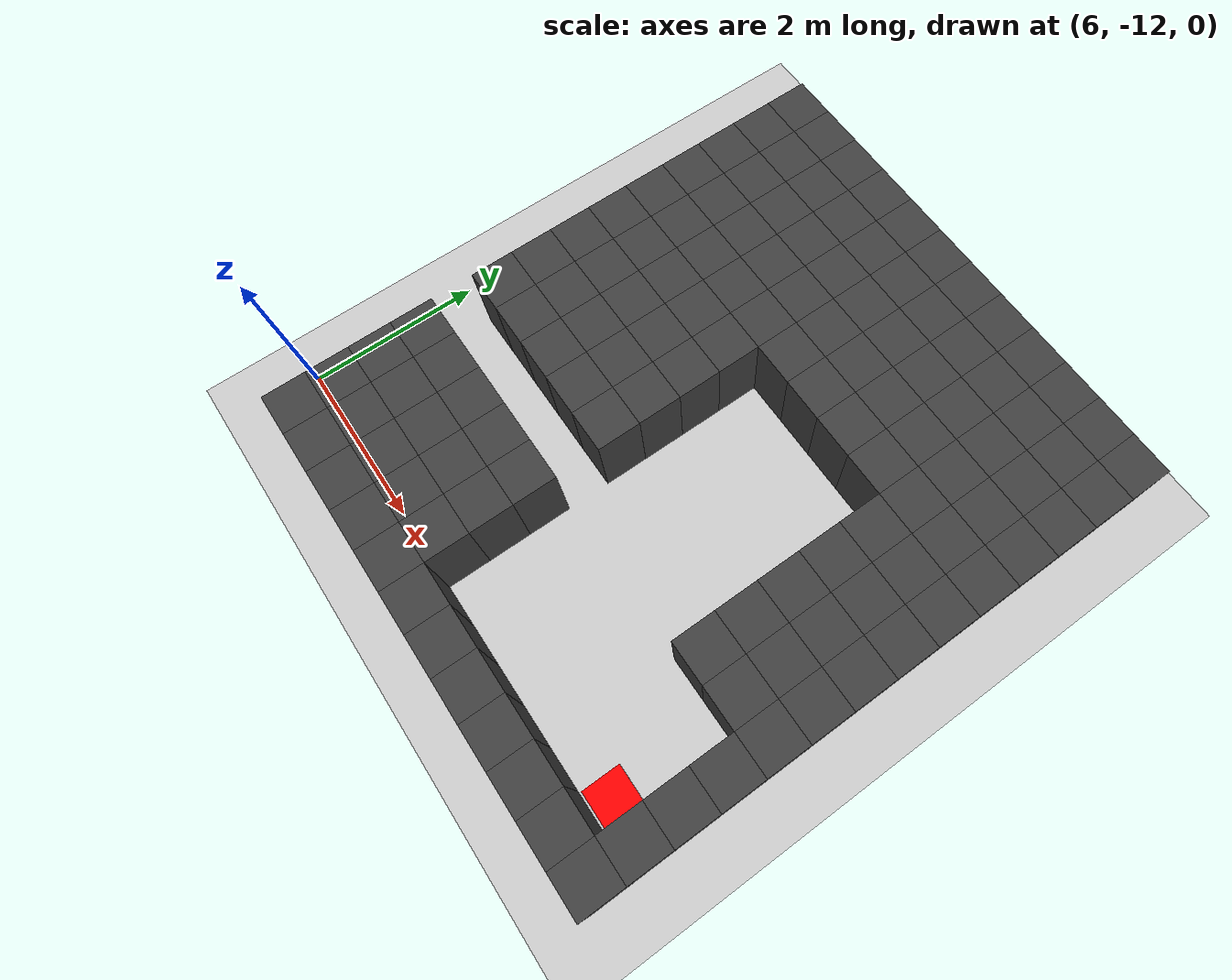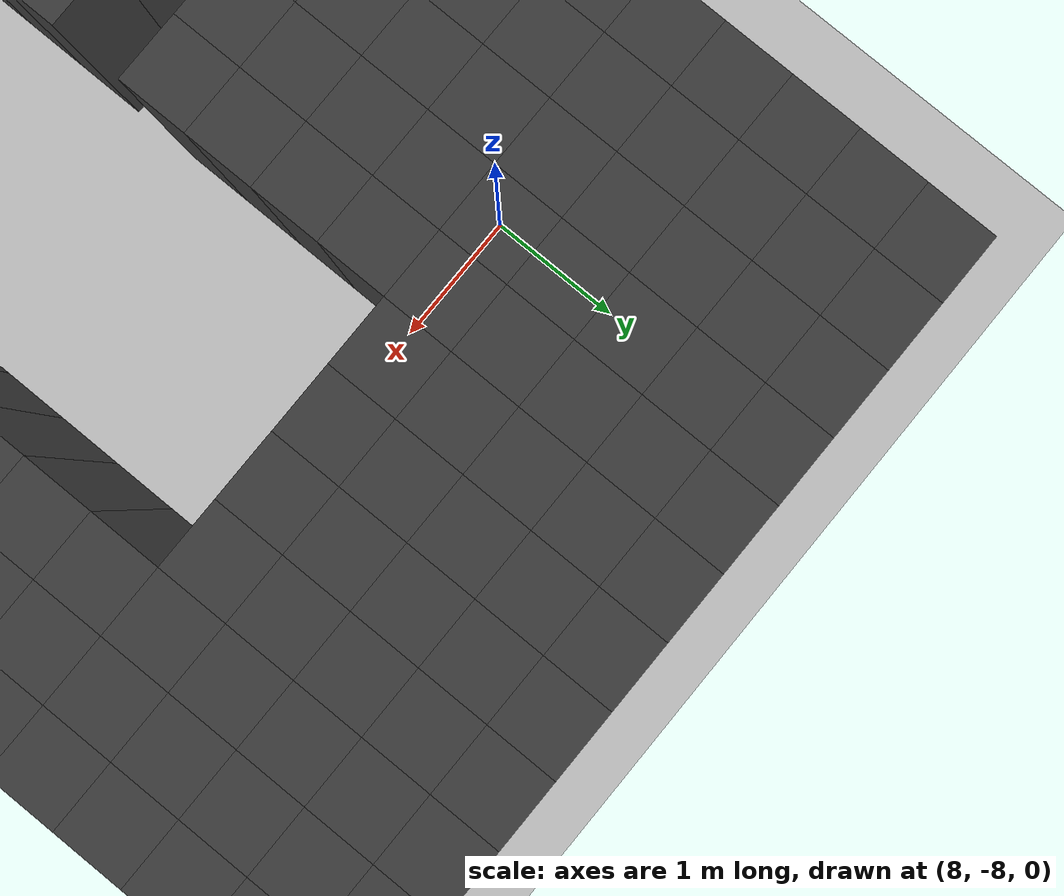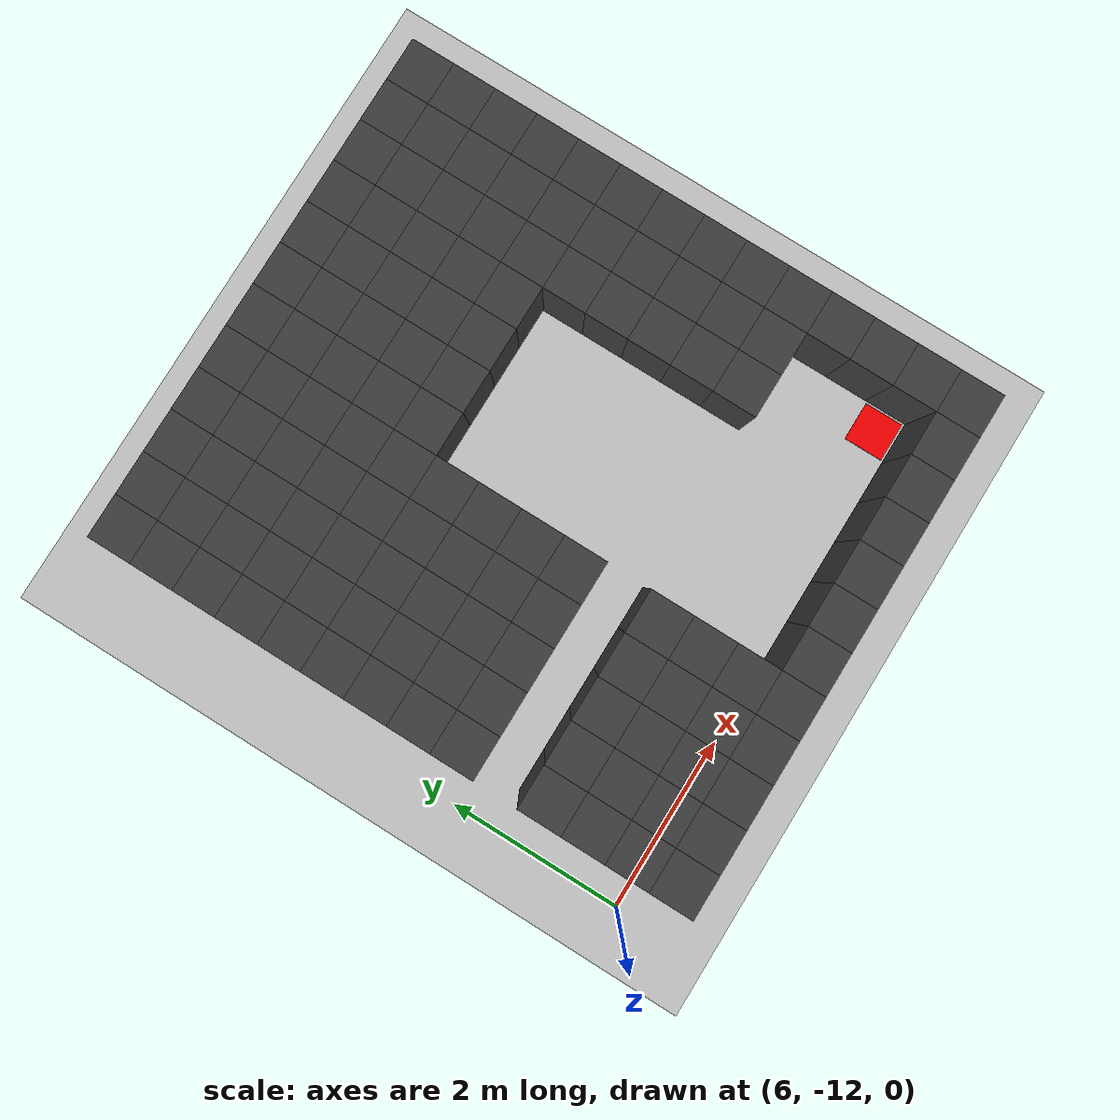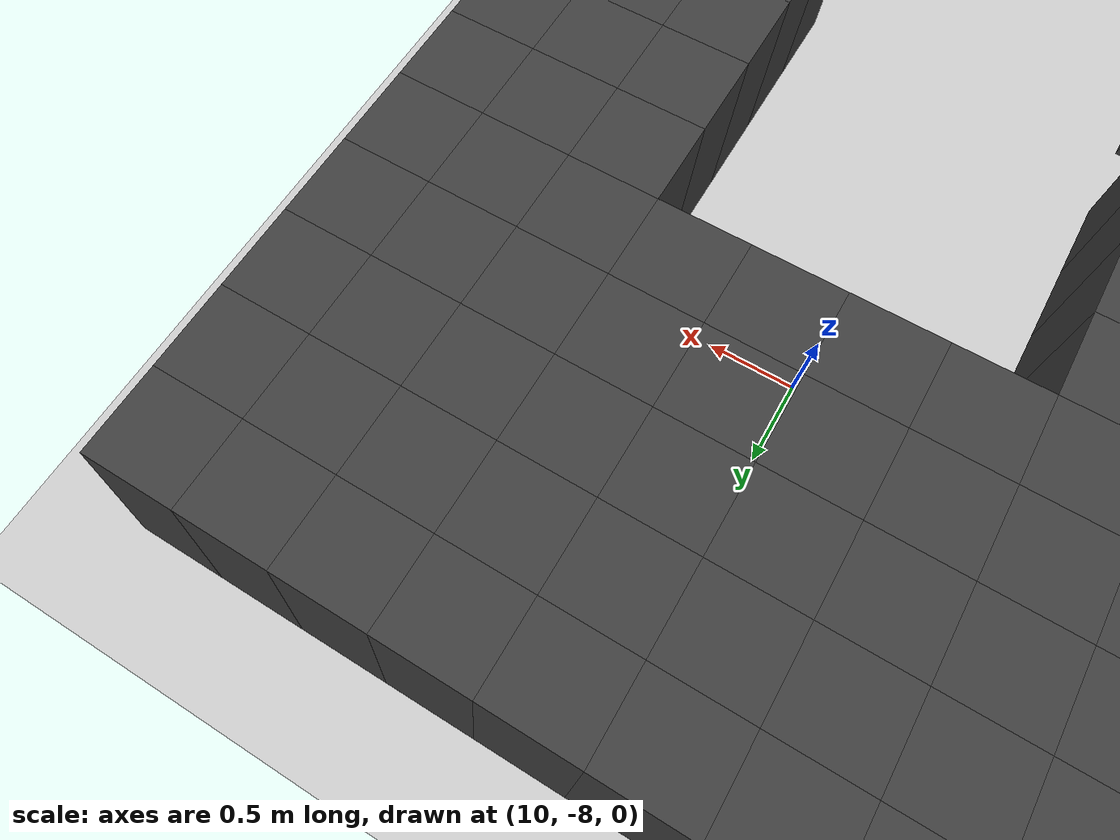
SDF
<sdf version="1.7">
 <world name="map_11779">
  <model name="ground_plane">
   <static>true</static>
   <link name="link">
    <collision name="collision">
     <geometry><plane><normal>0 0 1</normal><size>200 200</size></plane></geometry>
    </collision>
    <visual name="visual">
     <geometry><plane><normal>0 0 1</normal><size>200 200</size></plane></geometry>
     <material><ambient>0.8 0.8 0.8 1</ambient><diffuse>0.8 0.8 0.8 1</diffuse></material>
    </visual>
   </link>
  </model>
  <model name="maze_environment">
   <static>true</static>
   <link name="wall_1523">
    <pose>6.750 -5.750 0.500 0 0 0</pose>
    <collision name="col"><geometry><box><size>0.5 0.5 1.0</size></box></geometry></collision>
    <visual name="vis">
     <geometry><box><size>0.5 0.5 1.0</size></box></geometry>
     <material><ambient>0.15 0.15 0.15 1</ambient><diffuse>0.25 0.25 0.25 1</diffuse></material>
    </visual>
   </link>
   <link name="wall_1524">
    <pose>7.250 -5.750 0.500 0 0 0</pose>
    <collision name="col"><geometry><box><size>0.5 0.5 1.0</size></box></geometry></collision>
    <visual name="vis">
     <geometry><box><size>0.5 0.5 1.0</size></box></geometry>
     <material><ambient>0.15 0.15 0.15 1</ambient><diffuse>0.25 0.25 0.25 1</diffuse></material>
    </visual>
   </link>
   <link name="wall_1525">
    <pose>7.750 -5.750 0.500 0 0 0</pose>
    <collision name="col"><geometry><box><size>0.5 0.5 1.0</size></box></geometry></collision>
    <visual name="vis">
     <geometry><box><size>0.5 0.5 1.0</size></box></geometry>
     <material><ambient>0.15 0.15 0.15 1</ambient><diffuse>0.25 0.25 0.25 1</diffuse></material>
    </visual>
   </link>
   <link name="wall_1526">
    <pose>8.250 -5.750 0.500 0 0 0</pose>
    <collision name="col"><geometry><box><size>0.5 0.5 1.0</size></box></geometry></collision>
    <visual name="vis">
     <geometry><box><size>0.5 0.5 1.0</size></box></geometry>
     <material><ambient>0.15 0.15 0.15 1</ambient><diffuse>0.25 0.25 0.25 1</diffuse></material>
    </visual>
   </link>
   <link name="wall_1527">
    <pose>8.750 -5.750 0.500 0 0 0</pose>
    <collision name="col"><geometry><box><size>0.5 0.5 1.0</size></box></geometry></collision>
    <visual name="vis">
     <geometry><box><size>0.5 0.5 1.0</size></box></geometry>
     <material><ambient>0.15 0.15 0.15 1</ambient><diffuse>0.25 0.25 0.25 1</diffuse></material>
    </visual>
   </link>
   <link name="wall_1528">
    <pose>9.250 -5.750 0.500 0 0 0</pose>
    <collision name="col"><geometry><box><size>0.5 0.5 1.0</size></box></geometry></collision>
    <visual name="vis">
     <geometry><box><size>0.5 0.5 1.0</size></box></geometry>
     <material><ambient>0.15 0.15 0.15 1</ambient><diffuse>0.25 0.25 0.25 1</diffuse></material>
    </visual>
   </link>
   <link name="wall_1529">
    <pose>9.750 -5.750 0.500 0 0 0</pose>
    <collision name="col"><geometry><box><size>0.5 0.5 1.0</size></box></geometry></collision>
    <visual name="vis">
     <geometry><box><size>0.5 0.5 1.0</size></box></geometry>
     <material><ambient>0.15 0.15 0.15 1</ambient><diffuse>0.25 0.25 0.25 1</diffuse></material>
    </visual>
   </link>
   <link name="wall_1530">
    <pose>10.250 -5.750 0.500 0 0 0</pose>
    <collision name="col"><geometry><box><size>0.5 0.5 1.0</size></box></geometry></collision>
    <visual name="vis">
     <geometry><box><size>0.5 0.5 1.0</size></box></geometry>
     <material><ambient>0.15 0.15 0.15 1</ambient><diffuse>0.25 0.25 0.25 1</diffuse></material>
    </visual>
   </link>
   <link name="wall_1531">
    <pose>10.750 -5.750 0.500 0 0 0</pose>
    <collision name="col"><geometry><box><size>0.5 0.5 1.0</size></box></geometry></collision>
    <visual name="vis">
     <geometry><box><size>0.5 0.5 1.0</size></box></geometry>
     <material><ambient>0.15 0.15 0.15 1</ambient><diffuse>0.25 0.25 0.25 1</diffuse></material>
    </visual>
   </link>
   <link name="wall_1532">
    <pose>11.250 -5.750 0.500 0 0 0</pose>
    <collision name="col"><geometry><box><size>0.5 0.5 1.0</size></box></geometry></collision>
    <visual name="vis">
     <geometry><box><size>0.5 0.5 1.0</size></box></geometry>
     <material><ambient>0.15 0.15 0.15 1</ambient><diffuse>0.25 0.25 0.25 1</diffuse></material>
    </visual>
   </link>
   <link name="wall_1533">
    <pose>11.750 -5.750 0.500 0 0 0</pose>
    <collision name="col"><geometry><box><size>0.5 0.5 1.0</size></box></geometry></collision>
    <visual name="vis">
     <geometry><box><size>0.5 0.5 1.0</size></box></geometry>
     <material><ambient>0.15 0.15 0.15 1</ambient><diffuse>0.25 0.25 0.25 1</diffuse></material>
    </visual>
   </link>
   <link name="wall_1534">
    <pose>12.250 -5.750 0.500 0 0 0</pose>
    <collision name="col"><geometry><box><size>0.5 0.5 1.0</size></box></geometry></collision>
    <visual name="vis">
     <geometry><box><size>0.5 0.5 1.0</size></box></geometry>
     <material><ambient>0.15 0.15 0.15 1</ambient><diffuse>0.25 0.25 0.25 1</diffuse></material>
    </visual>
   </link>
   <link name="wall_1572">
    <pose>6.750 -6.250 0.500 0 0 0</pose>
    <collision name="col"><geometry><box><size>0.5 0.5 1.0</size></box></geometry></collision>
    <visual name="vis">
     <geometry><box><size>0.5 0.5 1.0</size></box></geometry>
     <material><ambient>0.15 0.15 0.15 1</ambient><diffuse>0.25 0.25 0.25 1</diffuse></material>
    </visual>
   </link>
   <link name="wall_1573">
    <pose>7.250 -6.250 0.500 0 0 0</pose>
    <collision name="col"><geometry><box><size>0.5 0.5 1.0</size></box></geometry></collision>
    <visual name="vis">
     <geometry><box><size>0.5 0.5 1.0</size></box></geometry>
     <material><ambient>0.15 0.15 0.15 1</ambient><diffuse>0.25 0.25 0.25 1</diffuse></material>
    </visual>
   </link>
   <link name="wall_1574">
    <pose>7.750 -6.250 0.500 0 0 0</pose>
    <collision name="col"><geometry><box><size>0.5 0.5 1.0</size></box></geometry></collision>
    <visual name="vis">
     <geometry><box><size>0.5 0.5 1.0</size></box></geometry>
     <material><ambient>0.15 0.15 0.15 1</ambient><diffuse>0.25 0.25 0.25 1</diffuse></material>
    </visual>
   </link>
   <link name="wall_1575">
    <pose>8.250 -6.250 0.500 0 0 0</pose>
    <collision name="col"><geometry><box><size>0.5 0.5 1.0</size></box></geometry></collision>
    <visual name="vis">
     <geometry><box><size>0.5 0.5 1.0</size></box></geometry>
     <material><ambient>0.15 0.15 0.15 1</ambient><diffuse>0.25 0.25 0.25 1</diffuse></material>
    </visual>
   </link>
   <link name="wall_1576">
    <pose>8.750 -6.250 0.500 0 0 0</pose>
    <collision name="col"><geometry><box><size>0.5 0.5 1.0</size></box></geometry></collision>
    <visual name="vis">
     <geometry><box><size>0.5 0.5 1.0</size></box></geometry>
     <material><ambient>0.15 0.15 0.15 1</ambient><diffuse>0.25 0.25 0.25 1</diffuse></material>
    </visual>
   </link>
   <link name="wall_1577">
    <pose>9.250 -6.250 0.500 0 0 0</pose>
    <collision name="col"><geometry><box><size>0.5 0.5 1.0</size></box></geometry></collision>
    <visual name="vis">
     <geometry><box><size>0.5 0.5 1.0</size></box></geometry>
     <material><ambient>0.15 0.15 0.15 1</ambient><diffuse>0.25 0.25 0.25 1</diffuse></material>
    </visual>
   </link>
   <link name="wall_1578">
    <pose>9.750 -6.250 0.500 0 0 0</pose>
    <collision name="col"><geometry><box><size>0.5 0.5 1.0</size></box></geometry></collision>
    <visual name="vis">
     <geometry><box><size>0.5 0.5 1.0</size></box></geometry>
     <material><ambient>0.15 0.15 0.15 1</ambient><diffuse>0.25 0.25 0.25 1</diffuse></material>
    </visual>
   </link>
   <link name="wall_1579">
    <pose>10.250 -6.250 0.500 0 0 0</pose>
    <collision name="col"><geometry><box><size>0.5 0.5 1.0</size></box></geometry></collision>
    <visual name="vis">
     <geometry><box><size>0.5 0.5 1.0</size></box></geometry>
     <material><ambient>0.15 0.15 0.15 1</ambient><diffuse>0.25 0.25 0.25 1</diffuse></material>
    </visual>
   </link>
   <link name="wall_1580">
    <pose>10.750 -6.250 0.500 0 0 0</pose>
    <collision name="col"><geometry><box><size>0.5 0.5 1.0</size></box></geometry></collision>
    <visual name="vis">
     <geometry><box><size>0.5 0.5 1.0</size></box></geometry>
     <material><ambient>0.15 0.15 0.15 1</ambient><diffuse>0.25 0.25 0.25 1</diffuse></material>
    </visual>
   </link>
   <link name="wall_1581">
    <pose>11.250 -6.250 0.500 0 0 0</pose>
    <collision name="col"><geometry><box><size>0.5 0.5 1.0</size></box></geometry></collision>
    <visual name="vis">
     <geometry><box><size>0.5 0.5 1.0</size></box></geometry>
     <material><ambient>0.15 0.15 0.15 1</ambient><diffuse>0.25 0.25 0.25 1</diffuse></material>
    </visual>
   </link>
   <link name="wall_1582">
    <pose>11.750 -6.250 0.500 0 0 0</pose>
    <collision name="col"><geometry><box><size>0.5 0.5 1.0</size></box></geometry></collision>
    <visual name="vis">
     <geometry><box><size>0.5 0.5 1.0</size></box></geometry>
     <material><ambient>0.15 0.15 0.15 1</ambient><diffuse>0.25 0.25 0.25 1</diffuse></material>
    </visual>
   </link>
   <link name="wall_1583">
    <pose>12.250 -6.250 0.500 0 0 0</pose>
    <collision name="col"><geometry><box><size>0.5 0.5 1.0</size></box></geometry></collision>
    <visual name="vis">
     <geometry><box><size>0.5 0.5 1.0</size></box></geometry>
     <material><ambient>0.15 0.15 0.15 1</ambient><diffuse>0.25 0.25 0.25 1</diffuse></material>
    </visual>
   </link>
   <link name="wall_1616">
    <pose>6.750 -6.750 0.500 0 0 0</pose>
    <collision name="col"><geometry><box><size>0.5 0.5 1.0</size></box></geometry></collision>
    <visual name="vis">
     <geometry><box><size>0.5 0.5 1.0</size></box></geometry>
     <material><ambient>0.15 0.15 0.15 1</ambient><diffuse>0.25 0.25 0.25 1</diffuse></material>
    </visual>
   </link>
   <link name="wall_1617">
    <pose>7.250 -6.750 0.500 0 0 0</pose>
    <collision name="col"><geometry><box><size>0.5 0.5 1.0</size></box></geometry></collision>
    <visual name="vis">
     <geometry><box><size>0.5 0.5 1.0</size></box></geometry>
     <material><ambient>0.15 0.15 0.15 1</ambient><diffuse>0.25 0.25 0.25 1</diffuse></material>
    </visual>
   </link>
   <link name="wall_1618">
    <pose>7.750 -6.750 0.500 0 0 0</pose>
    <collision name="col"><geometry><box><size>0.5 0.5 1.0</size></box></geometry></collision>
    <visual name="vis">
     <geometry><box><size>0.5 0.5 1.0</size></box></geometry>
     <material><ambient>0.15 0.15 0.15 1</ambient><diffuse>0.25 0.25 0.25 1</diffuse></material>
    </visual>
   </link>
   <link name="wall_1619">
    <pose>8.250 -6.750 0.500 0 0 0</pose>
    <collision name="col"><geometry><box><size>0.5 0.5 1.0</size></box></geometry></collision>
    <visual name="vis">
     <geometry><box><size>0.5 0.5 1.0</size></box></geometry>
     <material><ambient>0.15 0.15 0.15 1</ambient><diffuse>0.25 0.25 0.25 1</diffuse></material>
    </visual>
   </link>
   <link name="wall_1620">
    <pose>8.750 -6.750 0.500 0 0 0</pose>
    <collision name="col"><geometry><box><size>0.5 0.5 1.0</size></box></geometry></collision>
    <visual name="vis">
     <geometry><box><size>0.5 0.5 1.0</size></box></geometry>
     <material><ambient>0.15 0.15 0.15 1</ambient><diffuse>0.25 0.25 0.25 1</diffuse></material>
    </visual>
   </link>
   <link name="wall_1621">
    <pose>9.250 -6.750 0.500 0 0 0</pose>
    <collision name="col"><geometry><box><size>0.5 0.5 1.0</size></box></geometry></collision>
    <visual name="vis">
     <geometry><box><size>0.5 0.5 1.0</size></box></geometry>
     <material><ambient>0.15 0.15 0.15 1</ambient><diffuse>0.25 0.25 0.25 1</diffuse></material>
    </visual>
   </link>
   <link name="wall_1622">
    <pose>9.750 -6.750 0.500 0 0 0</pose>
    <collision name="col"><geometry><box><size>0.5 0.5 1.0</size></box></geometry></collision>
    <visual name="vis">
     <geometry><box><size>0.5 0.5 1.0</size></box></geometry>
     <material><ambient>0.15 0.15 0.15 1</ambient><diffuse>0.25 0.25 0.25 1</diffuse></material>
    </visual>
   </link>
   <link name="wall_1623">
    <pose>10.250 -6.750 0.500 0 0 0</pose>
    <collision name="col"><geometry><box><size>0.5 0.5 1.0</size></box></geometry></collision>
    <visual name="vis">
     <geometry><box><size>0.5 0.5 1.0</size></box></geometry>
     <material><ambient>0.15 0.15 0.15 1</ambient><diffuse>0.25 0.25 0.25 1</diffuse></material>
    </visual>
   </link>
   <link name="wall_1624">
    <pose>10.750 -6.750 0.500 0 0 0</pose>
    <collision name="col"><geometry><box><size>0.5 0.5 1.0</size></box></geometry></collision>
    <visual name="vis">
     <geometry><box><size>0.5 0.5 1.0</size></box></geometry>
     <material><ambient>0.15 0.15 0.15 1</ambient><diffuse>0.25 0.25 0.25 1</diffuse></material>
    </visual>
   </link>
   <link name="wall_1625">
    <pose>11.250 -6.750 0.500 0 0 0</pose>
    <collision name="col"><geometry><box><size>0.5 0.5 1.0</size></box></geometry></collision>
    <visual name="vis">
     <geometry><box><size>0.5 0.5 1.0</size></box></geometry>
     <material><ambient>0.15 0.15 0.15 1</ambient><diffuse>0.25 0.25 0.25 1</diffuse></material>
    </visual>
   </link>
   <link name="wall_1626">
    <pose>11.750 -6.750 0.500 0 0 0</pose>
    <collision name="col"><geometry><box><size>0.5 0.5 1.0</size></box></geometry></collision>
    <visual name="vis">
     <geometry><box><size>0.5 0.5 1.0</size></box></geometry>
     <material><ambient>0.15 0.15 0.15 1</ambient><diffuse>0.25 0.25 0.25 1</diffuse></material>
    </visual>
   </link>
   <link name="wall_1627">
    <pose>12.250 -6.750 0.500 0 0 0</pose>
    <collision name="col"><geometry><box><size>0.5 0.5 1.0</size></box></geometry></collision>
    <visual name="vis">
     <geometry><box><size>0.5 0.5 1.0</size></box></geometry>
     <material><ambient>0.15 0.15 0.15 1</ambient><diffuse>0.25 0.25 0.25 1</diffuse></material>
    </visual>
   </link>
   <link name="wall_1660">
    <pose>6.750 -7.250 0.500 0 0 0</pose>
    <collision name="col"><geometry><box><size>0.5 0.5 1.0</size></box></geometry></collision>
    <visual name="vis">
     <geometry><box><size>0.5 0.5 1.0</size></box></geometry>
     <material><ambient>0.15 0.15 0.15 1</ambient><diffuse>0.25 0.25 0.25 1</diffuse></material>
    </visual>
   </link>
   <link name="wall_1661">
    <pose>7.250 -7.250 0.500 0 0 0</pose>
    <collision name="col"><geometry><box><size>0.5 0.5 1.0</size></box></geometry></collision>
    <visual name="vis">
     <geometry><box><size>0.5 0.5 1.0</size></box></geometry>
     <material><ambient>0.15 0.15 0.15 1</ambient><diffuse>0.25 0.25 0.25 1</diffuse></material>
    </visual>
   </link>
   <link name="wall_1662">
    <pose>7.750 -7.250 0.500 0 0 0</pose>
    <collision name="col"><geometry><box><size>0.5 0.5 1.0</size></box></geometry></collision>
    <visual name="vis">
     <geometry><box><size>0.5 0.5 1.0</size></box></geometry>
     <material><ambient>0.15 0.15 0.15 1</ambient><diffuse>0.25 0.25 0.25 1</diffuse></material>
    </visual>
   </link>
   <link name="wall_1663">
    <pose>8.250 -7.250 0.500 0 0 0</pose>
    <collision name="col"><geometry><box><size>0.5 0.5 1.0</size></box></geometry></collision>
    <visual name="vis">
     <geometry><box><size>0.5 0.5 1.0</size></box></geometry>
     <material><ambient>0.15 0.15 0.15 1</ambient><diffuse>0.25 0.25 0.25 1</diffuse></material>
    </visual>
   </link>
   <link name="wall_1664">
    <pose>8.750 -7.250 0.500 0 0 0</pose>
    <collision name="col"><geometry><box><size>0.5 0.5 1.0</size></box></geometry></collision>
    <visual name="vis">
     <geometry><box><size>0.5 0.5 1.0</size></box></geometry>
     <material><ambient>0.15 0.15 0.15 1</ambient><diffuse>0.25 0.25 0.25 1</diffuse></material>
    </visual>
   </link>
   <link name="wall_1665">
    <pose>9.250 -7.250 0.500 0 0 0</pose>
    <collision name="col"><geometry><box><size>0.5 0.5 1.0</size></box></geometry></collision>
    <visual name="vis">
     <geometry><box><size>0.5 0.5 1.0</size></box></geometry>
     <material><ambient>0.15 0.15 0.15 1</ambient><diffuse>0.25 0.25 0.25 1</diffuse></material>
    </visual>
   </link>
   <link name="wall_1666">
    <pose>9.750 -7.250 0.500 0 0 0</pose>
    <collision name="col"><geometry><box><size>0.5 0.5 1.0</size></box></geometry></collision>
    <visual name="vis">
     <geometry><box><size>0.5 0.5 1.0</size></box></geometry>
     <material><ambient>0.15 0.15 0.15 1</ambient><diffuse>0.25 0.25 0.25 1</diffuse></material>
    </visual>
   </link>
   <link name="wall_1667">
    <pose>10.250 -7.250 0.500 0 0 0</pose>
    <collision name="col"><geometry><box><size>0.5 0.5 1.0</size></box></geometry></collision>
    <visual name="vis">
     <geometry><box><size>0.5 0.5 1.0</size></box></geometry>
     <material><ambient>0.15 0.15 0.15 1</ambient><diffuse>0.25 0.25 0.25 1</diffuse></material>
    </visual>
   </link>
   <link name="wall_1668">
    <pose>10.750 -7.250 0.500 0 0 0</pose>
    <collision name="col"><geometry><box><size>0.5 0.5 1.0</size></box></geometry></collision>
    <visual name="vis">
     <geometry><box><size>0.5 0.5 1.0</size></box></geometry>
     <material><ambient>0.15 0.15 0.15 1</ambient><diffuse>0.25 0.25 0.25 1</diffuse></material>
    </visual>
   </link>
   <link name="wall_1669">
    <pose>11.250 -7.250 0.500 0 0 0</pose>
    <collision name="col"><geometry><box><size>0.5 0.5 1.0</size></box></geometry></collision>
    <visual name="vis">
     <geometry><box><size>0.5 0.5 1.0</size></box></geometry>
     <material><ambient>0.15 0.15 0.15 1</ambient><diffuse>0.25 0.25 0.25 1</diffuse></material>
    </visual>
   </link>
   <link name="wall_1670">
    <pose>11.750 -7.250 0.500 0 0 0</pose>
    <collision name="col"><geometry><box><size>0.5 0.5 1.0</size></box></geometry></collision>
    <visual name="vis">
     <geometry><box><size>0.5 0.5 1.0</size></box></geometry>
     <material><ambient>0.15 0.15 0.15 1</ambient><diffuse>0.25 0.25 0.25 1</diffuse></material>
    </visual>
   </link>
   <link name="wall_1671">
    <pose>12.250 -7.250 0.500 0 0 0</pose>
    <collision name="col"><geometry><box><size>0.5 0.5 1.0</size></box></geometry></collision>
    <visual name="vis">
     <geometry><box><size>0.5 0.5 1.0</size></box></geometry>
     <material><ambient>0.15 0.15 0.15 1</ambient><diffuse>0.25 0.25 0.25 1</diffuse></material>
    </visual>
   </link>
   <link name="wall_1702">
    <pose>6.750 -7.750 0.500 0 0 0</pose>
    <collision name="col"><geometry><box><size>0.5 0.5 1.0</size></box></geometry></collision>
    <visual name="vis">
     <geometry><box><size>0.5 0.5 1.0</size></box></geometry>
     <material><ambient>0.15 0.15 0.15 1</ambient><diffuse>0.25 0.25 0.25 1</diffuse></material>
    </visual>
   </link>
   <link name="wall_1703">
    <pose>7.250 -7.750 0.500 0 0 0</pose>
    <collision name="col"><geometry><box><size>0.5 0.5 1.0</size></box></geometry></collision>
    <visual name="vis">
     <geometry><box><size>0.5 0.5 1.0</size></box></geometry>
     <material><ambient>0.15 0.15 0.15 1</ambient><diffuse>0.25 0.25 0.25 1</diffuse></material>
    </visual>
   </link>
   <link name="wall_1704">
    <pose>7.750 -7.750 0.500 0 0 0</pose>
    <collision name="col"><geometry><box><size>0.5 0.5 1.0</size></box></geometry></collision>
    <visual name="vis">
     <geometry><box><size>0.5 0.5 1.0</size></box></geometry>
     <material><ambient>0.15 0.15 0.15 1</ambient><diffuse>0.25 0.25 0.25 1</diffuse></material>
    </visual>
   </link>
   <link name="wall_1705">
    <pose>8.250 -7.750 0.500 0 0 0</pose>
    <collision name="col"><geometry><box><size>0.5 0.5 1.0</size></box></geometry></collision>
    <visual name="vis">
     <geometry><box><size>0.5 0.5 1.0</size></box></geometry>
     <material><ambient>0.15 0.15 0.15 1</ambient><diffuse>0.25 0.25 0.25 1</diffuse></material>
    </visual>
   </link>
   <link name="wall_1706">
    <pose>8.750 -7.750 0.500 0 0 0</pose>
    <collision name="col"><geometry><box><size>0.5 0.5 1.0</size></box></geometry></collision>
    <visual name="vis">
     <geometry><box><size>0.5 0.5 1.0</size></box></geometry>
     <material><ambient>0.15 0.15 0.15 1</ambient><diffuse>0.25 0.25 0.25 1</diffuse></material>
    </visual>
   </link>
   <link name="wall_1707">
    <pose>9.250 -7.750 0.500 0 0 0</pose>
    <collision name="col"><geometry><box><size>0.5 0.5 1.0</size></box></geometry></collision>
    <visual name="vis">
     <geometry><box><size>0.5 0.5 1.0</size></box></geometry>
     <material><ambient>0.15 0.15 0.15 1</ambient><diffuse>0.25 0.25 0.25 1</diffuse></material>
    </visual>
   </link>
   <link name="wall_1708">
    <pose>9.750 -7.750 0.500 0 0 0</pose>
    <collision name="col"><geometry><box><size>0.5 0.5 1.0</size></box></geometry></collision>
    <visual name="vis">
     <geometry><box><size>0.5 0.5 1.0</size></box></geometry>
     <material><ambient>0.15 0.15 0.15 1</ambient><diffuse>0.25 0.25 0.25 1</diffuse></material>
    </visual>
   </link>
   <link name="wall_1709">
    <pose>10.250 -7.750 0.500 0 0 0</pose>
    <collision name="col"><geometry><box><size>0.5 0.5 1.0</size></box></geometry></collision>
    <visual name="vis">
     <geometry><box><size>0.5 0.5 1.0</size></box></geometry>
     <material><ambient>0.15 0.15 0.15 1</ambient><diffuse>0.25 0.25 0.25 1</diffuse></material>
    </visual>
   </link>
   <link name="wall_1710">
    <pose>10.750 -7.750 0.500 0 0 0</pose>
    <collision name="col"><geometry><box><size>0.5 0.5 1.0</size></box></geometry></collision>
    <visual name="vis">
     <geometry><box><size>0.5 0.5 1.0</size></box></geometry>
     <material><ambient>0.15 0.15 0.15 1</ambient><diffuse>0.25 0.25 0.25 1</diffuse></material>
    </visual>
   </link>
   <link name="wall_1711">
    <pose>11.250 -7.750 0.500 0 0 0</pose>
    <collision name="col"><geometry><box><size>0.5 0.5 1.0</size></box></geometry></collision>
    <visual name="vis">
     <geometry><box><size>0.5 0.5 1.0</size></box></geometry>
     <material><ambient>0.15 0.15 0.15 1</ambient><diffuse>0.25 0.25 0.25 1</diffuse></material>
    </visual>
   </link>
   <link name="wall_1712">
    <pose>11.750 -7.750 0.500 0 0 0</pose>
    <collision name="col"><geometry><box><size>0.5 0.5 1.0</size></box></geometry></collision>
    <visual name="vis">
     <geometry><box><size>0.5 0.5 1.0</size></box></geometry>
     <material><ambient>0.15 0.15 0.15 1</ambient><diffuse>0.25 0.25 0.25 1</diffuse></material>
    </visual>
   </link>
   <link name="wall_1713">
    <pose>12.250 -7.750 0.500 0 0 0</pose>
    <collision name="col"><geometry><box><size>0.5 0.5 1.0</size></box></geometry></collision>
    <visual name="vis">
     <geometry><box><size>0.5 0.5 1.0</size></box></geometry>
     <material><ambient>0.15 0.15 0.15 1</ambient><diffuse>0.25 0.25 0.25 1</diffuse></material>
    </visual>
   </link>
   <link name="wall_1744">
    <pose>6.750 -8.250 0.500 0 0 0</pose>
    <collision name="col"><geometry><box><size>0.5 0.5 1.0</size></box></geometry></collision>
    <visual name="vis">
     <geometry><box><size>0.5 0.5 1.0</size></box></geometry>
     <material><ambient>0.15 0.15 0.15 1</ambient><diffuse>0.25 0.25 0.25 1</diffuse></material>
    </visual>
   </link>
   <link name="wall_1745">
    <pose>7.250 -8.250 0.500 0 0 0</pose>
    <collision name="col"><geometry><box><size>0.5 0.5 1.0</size></box></geometry></collision>
    <visual name="vis">
     <geometry><box><size>0.5 0.5 1.0</size></box></geometry>
     <material><ambient>0.15 0.15 0.15 1</ambient><diffuse>0.25 0.25 0.25 1</diffuse></material>
    </visual>
   </link>
   <link name="wall_1746">
    <pose>7.750 -8.250 0.500 0 0 0</pose>
    <collision name="col"><geometry><box><size>0.5 0.5 1.0</size></box></geometry></collision>
    <visual name="vis">
     <geometry><box><size>0.5 0.5 1.0</size></box></geometry>
     <material><ambient>0.15 0.15 0.15 1</ambient><diffuse>0.25 0.25 0.25 1</diffuse></material>
    </visual>
   </link>
   <link name="wall_1747">
    <pose>8.250 -8.250 0.500 0 0 0</pose>
    <collision name="col"><geometry><box><size>0.5 0.5 1.0</size></box></geometry></collision>
    <visual name="vis">
     <geometry><box><size>0.5 0.5 1.0</size></box></geometry>
     <material><ambient>0.15 0.15 0.15 1</ambient><diffuse>0.25 0.25 0.25 1</diffuse></material>
    </visual>
   </link>
   <link name="wall_1748">
    <pose>8.750 -8.250 0.500 0 0 0</pose>
    <collision name="col"><geometry><box><size>0.5 0.5 1.0</size></box></geometry></collision>
    <visual name="vis">
     <geometry><box><size>0.5 0.5 1.0</size></box></geometry>
     <material><ambient>0.15 0.15 0.15 1</ambient><diffuse>0.25 0.25 0.25 1</diffuse></material>
    </visual>
   </link>
   <link name="wall_1749">
    <pose>11.250 -8.250 0.500 0 0 0</pose>
    <collision name="col"><geometry><box><size>0.5 0.5 1.0</size></box></geometry></collision>
    <visual name="vis">
     <geometry><box><size>0.5 0.5 1.0</size></box></geometry>
     <material><ambient>0.15 0.15 0.15 1</ambient><diffuse>0.25 0.25 0.25 1</diffuse></material>
    </visual>
   </link>
   <link name="wall_1750">
    <pose>11.750 -8.250 0.500 0 0 0</pose>
    <collision name="col"><geometry><box><size>0.5 0.5 1.0</size></box></geometry></collision>
    <visual name="vis">
     <geometry><box><size>0.5 0.5 1.0</size></box></geometry>
     <material><ambient>0.15 0.15 0.15 1</ambient><diffuse>0.25 0.25 0.25 1</diffuse></material>
    </visual>
   </link>
   <link name="wall_1751">
    <pose>12.250 -8.250 0.500 0 0 0</pose>
    <collision name="col"><geometry><box><size>0.5 0.5 1.0</size></box></geometry></collision>
    <visual name="vis">
     <geometry><box><size>0.5 0.5 1.0</size></box></geometry>
     <material><ambient>0.15 0.15 0.15 1</ambient><diffuse>0.25 0.25 0.25 1</diffuse></material>
    </visual>
   </link>
   <link name="wall_1779">
    <pose>6.750 -8.750 0.500 0 0 0</pose>
    <collision name="col"><geometry><box><size>0.5 0.5 1.0</size></box></geometry></collision>
    <visual name="vis">
     <geometry><box><size>0.5 0.5 1.0</size></box></geometry>
     <material><ambient>0.15 0.15 0.15 1</ambient><diffuse>0.25 0.25 0.25 1</diffuse></material>
    </visual>
   </link>
   <link name="wall_1780">
    <pose>7.250 -8.750 0.500 0 0 0</pose>
    <collision name="col"><geometry><box><size>0.5 0.5 1.0</size></box></geometry></collision>
    <visual name="vis">
     <geometry><box><size>0.5 0.5 1.0</size></box></geometry>
     <material><ambient>0.15 0.15 0.15 1</ambient><diffuse>0.25 0.25 0.25 1</diffuse></material>
    </visual>
   </link>
   <link name="wall_1781">
    <pose>7.750 -8.750 0.500 0 0 0</pose>
    <collision name="col"><geometry><box><size>0.5 0.5 1.0</size></box></geometry></collision>
    <visual name="vis">
     <geometry><box><size>0.5 0.5 1.0</size></box></geometry>
     <material><ambient>0.15 0.15 0.15 1</ambient><diffuse>0.25 0.25 0.25 1</diffuse></material>
    </visual>
   </link>
   <link name="wall_1782">
    <pose>8.250 -8.750 0.500 0 0 0</pose>
    <collision name="col"><geometry><box><size>0.5 0.5 1.0</size></box></geometry></collision>
    <visual name="vis">
     <geometry><box><size>0.5 0.5 1.0</size></box></geometry>
     <material><ambient>0.15 0.15 0.15 1</ambient><diffuse>0.25 0.25 0.25 1</diffuse></material>
    </visual>
   </link>
   <link name="wall_1783">
    <pose>8.750 -8.750 0.500 0 0 0</pose>
    <collision name="col"><geometry><box><size>0.5 0.5 1.0</size></box></geometry></collision>
    <visual name="vis">
     <geometry><box><size>0.5 0.5 1.0</size></box></geometry>
     <material><ambient>0.15 0.15 0.15 1</ambient><diffuse>0.25 0.25 0.25 1</diffuse></material>
    </visual>
   </link>
   <link name="wall_1784">
    <pose>11.250 -8.750 0.500 0 0 0</pose>
    <collision name="col"><geometry><box><size>0.5 0.5 1.0</size></box></geometry></collision>
    <visual name="vis">
     <geometry><box><size>0.5 0.5 1.0</size></box></geometry>
     <material><ambient>0.15 0.15 0.15 1</ambient><diffuse>0.25 0.25 0.25 1</diffuse></material>
    </visual>
   </link>
   <link name="wall_1785">
    <pose>11.750 -8.750 0.500 0 0 0</pose>
    <collision name="col"><geometry><box><size>0.5 0.5 1.0</size></box></geometry></collision>
    <visual name="vis">
     <geometry><box><size>0.5 0.5 1.0</size></box></geometry>
     <material><ambient>0.15 0.15 0.15 1</ambient><diffuse>0.25 0.25 0.25 1</diffuse></material>
    </visual>
   </link>
   <link name="wall_1786">
    <pose>12.250 -8.750 0.500 0 0 0</pose>
    <collision name="col"><geometry><box><size>0.5 0.5 1.0</size></box></geometry></collision>
    <visual name="vis">
     <geometry><box><size>0.5 0.5 1.0</size></box></geometry>
     <material><ambient>0.15 0.15 0.15 1</ambient><diffuse>0.25 0.25 0.25 1</diffuse></material>
    </visual>
   </link>
   <link name="wall_1810">
    <pose>6.750 -9.250 0.500 0 0 0</pose>
    <collision name="col"><geometry><box><size>0.5 0.5 1.0</size></box></geometry></collision>
    <visual name="vis">
     <geometry><box><size>0.5 0.5 1.0</size></box></geometry>
     <material><ambient>0.15 0.15 0.15 1</ambient><diffuse>0.25 0.25 0.25 1</diffuse></material>
    </visual>
   </link>
   <link name="wall_1811">
    <pose>7.250 -9.250 0.500 0 0 0</pose>
    <collision name="col"><geometry><box><size>0.5 0.5 1.0</size></box></geometry></collision>
    <visual name="vis">
     <geometry><box><size>0.5 0.5 1.0</size></box></geometry>
     <material><ambient>0.15 0.15 0.15 1</ambient><diffuse>0.25 0.25 0.25 1</diffuse></material>
    </visual>
   </link>
   <link name="wall_1812">
    <pose>7.750 -9.250 0.500 0 0 0</pose>
    <collision name="col"><geometry><box><size>0.5 0.5 1.0</size></box></geometry></collision>
    <visual name="vis">
     <geometry><box><size>0.5 0.5 1.0</size></box></geometry>
     <material><ambient>0.15 0.15 0.15 1</ambient><diffuse>0.25 0.25 0.25 1</diffuse></material>
    </visual>
   </link>
   <link name="wall_1813">
    <pose>8.250 -9.250 0.500 0 0 0</pose>
    <collision name="col"><geometry><box><size>0.5 0.5 1.0</size></box></geometry></collision>
    <visual name="vis">
     <geometry><box><size>0.5 0.5 1.0</size></box></geometry>
     <material><ambient>0.15 0.15 0.15 1</ambient><diffuse>0.25 0.25 0.25 1</diffuse></material>
    </visual>
   </link>
   <link name="wall_1814">
    <pose>8.750 -9.250 0.500 0 0 0</pose>
    <collision name="col"><geometry><box><size>0.5 0.5 1.0</size></box></geometry></collision>
    <visual name="vis">
     <geometry><box><size>0.5 0.5 1.0</size></box></geometry>
     <material><ambient>0.15 0.15 0.15 1</ambient><diffuse>0.25 0.25 0.25 1</diffuse></material>
    </visual>
   </link>
   <link name="wall_1815">
    <pose>11.250 -9.250 0.500 0 0 0</pose>
    <collision name="col"><geometry><box><size>0.5 0.5 1.0</size></box></geometry></collision>
    <visual name="vis">
     <geometry><box><size>0.5 0.5 1.0</size></box></geometry>
     <material><ambient>0.15 0.15 0.15 1</ambient><diffuse>0.25 0.25 0.25 1</diffuse></material>
    </visual>
   </link>
   <link name="wall_1816">
    <pose>11.750 -9.250 0.500 0 0 0</pose>
    <collision name="col"><geometry><box><size>0.5 0.5 1.0</size></box></geometry></collision>
    <visual name="vis">
     <geometry><box><size>0.5 0.5 1.0</size></box></geometry>
     <material><ambient>0.15 0.15 0.15 1</ambient><diffuse>0.25 0.25 0.25 1</diffuse></material>
    </visual>
   </link>
   <link name="wall_1817">
    <pose>12.250 -9.250 0.500 0 0 0</pose>
    <collision name="col"><geometry><box><size>0.5 0.5 1.0</size></box></geometry></collision>
    <visual name="vis">
     <geometry><box><size>0.5 0.5 1.0</size></box></geometry>
     <material><ambient>0.15 0.15 0.15 1</ambient><diffuse>0.25 0.25 0.25 1</diffuse></material>
    </visual>
   </link>
   <link name="wall_1841">
    <pose>6.750 -9.750 0.500 0 0 0</pose>
    <collision name="col"><geometry><box><size>0.5 0.5 1.0</size></box></geometry></collision>
    <visual name="vis">
     <geometry><box><size>0.5 0.5 1.0</size></box></geometry>
     <material><ambient>0.15 0.15 0.15 1</ambient><diffuse>0.25 0.25 0.25 1</diffuse></material>
    </visual>
   </link>
   <link name="wall_1842">
    <pose>7.250 -9.750 0.500 0 0 0</pose>
    <collision name="col"><geometry><box><size>0.5 0.5 1.0</size></box></geometry></collision>
    <visual name="vis">
     <geometry><box><size>0.5 0.5 1.0</size></box></geometry>
     <material><ambient>0.15 0.15 0.15 1</ambient><diffuse>0.25 0.25 0.25 1</diffuse></material>
    </visual>
   </link>
   <link name="wall_1843">
    <pose>7.750 -9.750 0.500 0 0 0</pose>
    <collision name="col"><geometry><box><size>0.5 0.5 1.0</size></box></geometry></collision>
    <visual name="vis">
     <geometry><box><size>0.5 0.5 1.0</size></box></geometry>
     <material><ambient>0.15 0.15 0.15 1</ambient><diffuse>0.25 0.25 0.25 1</diffuse></material>
    </visual>
   </link>
   <link name="wall_1844">
    <pose>8.250 -9.750 0.500 0 0 0</pose>
    <collision name="col"><geometry><box><size>0.5 0.5 1.0</size></box></geometry></collision>
    <visual name="vis">
     <geometry><box><size>0.5 0.5 1.0</size></box></geometry>
     <material><ambient>0.15 0.15 0.15 1</ambient><diffuse>0.25 0.25 0.25 1</diffuse></material>
    </visual>
   </link>
   <link name="wall_1845">
    <pose>8.750 -9.750 0.500 0 0 0</pose>
    <collision name="col"><geometry><box><size>0.5 0.5 1.0</size></box></geometry></collision>
    <visual name="vis">
     <geometry><box><size>0.5 0.5 1.0</size></box></geometry>
     <material><ambient>0.15 0.15 0.15 1</ambient><diffuse>0.25 0.25 0.25 1</diffuse></material>
    </visual>
   </link>
   <link name="wall_1846">
    <pose>11.250 -9.750 0.500 0 0 0</pose>
    <collision name="col"><geometry><box><size>0.5 0.5 1.0</size></box></geometry></collision>
    <visual name="vis">
     <geometry><box><size>0.5 0.5 1.0</size></box></geometry>
     <material><ambient>0.15 0.15 0.15 1</ambient><diffuse>0.25 0.25 0.25 1</diffuse></material>
    </visual>
   </link>
   <link name="wall_1847">
    <pose>11.750 -9.750 0.500 0 0 0</pose>
    <collision name="col"><geometry><box><size>0.5 0.5 1.0</size></box></geometry></collision>
    <visual name="vis">
     <geometry><box><size>0.5 0.5 1.0</size></box></geometry>
     <material><ambient>0.15 0.15 0.15 1</ambient><diffuse>0.25 0.25 0.25 1</diffuse></material>
    </visual>
   </link>
   <link name="wall_1848">
    <pose>12.250 -9.750 0.500 0 0 0</pose>
    <collision name="col"><geometry><box><size>0.5 0.5 1.0</size></box></geometry></collision>
    <visual name="vis">
     <geometry><box><size>0.5 0.5 1.0</size></box></geometry>
     <material><ambient>0.15 0.15 0.15 1</ambient><diffuse>0.25 0.25 0.25 1</diffuse></material>
    </visual>
   </link>
   <link name="wall_1870">
    <pose>11.250 -10.250 0.500 0 0 0</pose>
    <collision name="col"><geometry><box><size>0.5 0.5 1.0</size></box></geometry></collision>
    <visual name="vis">
     <geometry><box><size>0.5 0.5 1.0</size></box></geometry>
     <material><ambient>0.15 0.15 0.15 1</ambient><diffuse>0.25 0.25 0.25 1</diffuse></material>
    </visual>
   </link>
   <link name="wall_1871">
    <pose>11.750 -10.250 0.500 0 0 0</pose>
    <collision name="col"><geometry><box><size>0.5 0.5 1.0</size></box></geometry></collision>
    <visual name="vis">
     <geometry><box><size>0.5 0.5 1.0</size></box></geometry>
     <material><ambient>0.15 0.15 0.15 1</ambient><diffuse>0.25 0.25 0.25 1</diffuse></material>
    </visual>
   </link>
   <link name="wall_1872">
    <pose>12.250 -10.250 0.500 0 0 0</pose>
    <collision name="col"><geometry><box><size>0.5 0.5 1.0</size></box></geometry></collision>
    <visual name="vis">
     <geometry><box><size>0.5 0.5 1.0</size></box></geometry>
     <material><ambient>0.15 0.15 0.15 1</ambient><diffuse>0.25 0.25 0.25 1</diffuse></material>
    </visual>
   </link>
   <link name="wall_1893">
    <pose>6.750 -10.750 0.500 0 0 0</pose>
    <collision name="col"><geometry><box><size>0.5 0.5 1.0</size></box></geometry></collision>
    <visual name="vis">
     <geometry><box><size>0.5 0.5 1.0</size></box></geometry>
     <material><ambient>0.15 0.15 0.15 1</ambient><diffuse>0.25 0.25 0.25 1</diffuse></material>
    </visual>
   </link>
   <link name="wall_1894">
    <pose>7.250 -10.750 0.500 0 0 0</pose>
    <collision name="col"><geometry><box><size>0.5 0.5 1.0</size></box></geometry></collision>
    <visual name="vis">
     <geometry><box><size>0.5 0.5 1.0</size></box></geometry>
     <material><ambient>0.15 0.15 0.15 1</ambient><diffuse>0.25 0.25 0.25 1</diffuse></material>
    </visual>
   </link>
   <link name="wall_1895">
    <pose>7.750 -10.750 0.500 0 0 0</pose>
    <collision name="col"><geometry><box><size>0.5 0.5 1.0</size></box></geometry></collision>
    <visual name="vis">
     <geometry><box><size>0.5 0.5 1.0</size></box></geometry>
     <material><ambient>0.15 0.15 0.15 1</ambient><diffuse>0.25 0.25 0.25 1</diffuse></material>
    </visual>
   </link>
   <link name="wall_1896">
    <pose>8.250 -10.750 0.500 0 0 0</pose>
    <collision name="col"><geometry><box><size>0.5 0.5 1.0</size></box></geometry></collision>
    <visual name="vis">
     <geometry><box><size>0.5 0.5 1.0</size></box></geometry>
     <material><ambient>0.15 0.15 0.15 1</ambient><diffuse>0.25 0.25 0.25 1</diffuse></material>
    </visual>
   </link>
   <link name="wall_1897">
    <pose>8.750 -10.750 0.500 0 0 0</pose>
    <collision name="col"><geometry><box><size>0.5 0.5 1.0</size></box></geometry></collision>
    <visual name="vis">
     <geometry><box><size>0.5 0.5 1.0</size></box></geometry>
     <material><ambient>0.15 0.15 0.15 1</ambient><diffuse>0.25 0.25 0.25 1</diffuse></material>
    </visual>
   </link>
   <link name="wall_1898">
    <pose>12.250 -10.750 0.500 0 0 0</pose>
    <collision name="col"><geometry><box><size>0.5 0.5 1.0</size></box></geometry></collision>
    <visual name="vis">
     <geometry><box><size>0.5 0.5 1.0</size></box></geometry>
     <material><ambient>0.15 0.15 0.15 1</ambient><diffuse>0.25 0.25 0.25 1</diffuse></material>
    </visual>
   </link>
   <link name="wall_1929">
    <pose>6.750 -11.250 0.500 0 0 0</pose>
    <collision name="col"><geometry><box><size>0.5 0.5 1.0</size></box></geometry></collision>
    <visual name="vis">
     <geometry><box><size>0.5 0.5 1.0</size></box></geometry>
     <material><ambient>0.15 0.15 0.15 1</ambient><diffuse>0.25 0.25 0.25 1</diffuse></material>
    </visual>
   </link>
   <link name="wall_1930">
    <pose>7.250 -11.250 0.500 0 0 0</pose>
    <collision name="col"><geometry><box><size>0.5 0.5 1.0</size></box></geometry></collision>
    <visual name="vis">
     <geometry><box><size>0.5 0.5 1.0</size></box></geometry>
     <material><ambient>0.15 0.15 0.15 1</ambient><diffuse>0.25 0.25 0.25 1</diffuse></material>
    </visual>
   </link>
   <link name="wall_1931">
    <pose>7.750 -11.250 0.500 0 0 0</pose>
    <collision name="col"><geometry><box><size>0.5 0.5 1.0</size></box></geometry></collision>
    <visual name="vis">
     <geometry><box><size>0.5 0.5 1.0</size></box></geometry>
     <material><ambient>0.15 0.15 0.15 1</ambient><diffuse>0.25 0.25 0.25 1</diffuse></material>
    </visual>
   </link>
   <link name="wall_1932">
    <pose>8.250 -11.250 0.500 0 0 0</pose>
    <collision name="col"><geometry><box><size>0.5 0.5 1.0</size></box></geometry></collision>
    <visual name="vis">
     <geometry><box><size>0.5 0.5 1.0</size></box></geometry>
     <material><ambient>0.15 0.15 0.15 1</ambient><diffuse>0.25 0.25 0.25 1</diffuse></material>
    </visual>
   </link>
   <link name="wall_1933">
    <pose>8.750 -11.250 0.500 0 0 0</pose>
    <collision name="col"><geometry><box><size>0.5 0.5 1.0</size></box></geometry></collision>
    <visual name="vis">
     <geometry><box><size>0.5 0.5 1.0</size></box></geometry>
     <material><ambient>0.15 0.15 0.15 1</ambient><diffuse>0.25 0.25 0.25 1</diffuse></material>
    </visual>
   </link>
   <link name="wall_1934">
    <pose>12.250 -11.250 0.500 0 0 0</pose>
    <collision name="col"><geometry><box><size>0.5 0.5 1.0</size></box></geometry></collision>
    <visual name="vis">
     <geometry><box><size>0.5 0.5 1.0</size></box></geometry>
     <material><ambient>0.15 0.15 0.15 1</ambient><diffuse>0.25 0.25 0.25 1</diffuse></material>
    </visual>
   </link>
   <link name="wall_1965">
    <pose>6.750 -11.750 0.500 0 0 0</pose>
    <collision name="col"><geometry><box><size>0.5 0.5 1.0</size></box></geometry></collision>
    <visual name="vis">
     <geometry><box><size>0.5 0.5 1.0</size></box></geometry>
     <material><ambient>0.15 0.15 0.15 1</ambient><diffuse>0.25 0.25 0.25 1</diffuse></material>
    </visual>
   </link>
   <link name="wall_1966">
    <pose>7.250 -11.750 0.500 0 0 0</pose>
    <collision name="col"><geometry><box><size>0.5 0.5 1.0</size></box></geometry></collision>
    <visual name="vis">
     <geometry><box><size>0.5 0.5 1.0</size></box></geometry>
     <material><ambient>0.15 0.15 0.15 1</ambient><diffuse>0.25 0.25 0.25 1</diffuse></material>
    </visual>
   </link>
   <link name="wall_1967">
    <pose>7.750 -11.750 0.500 0 0 0</pose>
    <collision name="col"><geometry><box><size>0.5 0.5 1.0</size></box></geometry></collision>
    <visual name="vis">
     <geometry><box><size>0.5 0.5 1.0</size></box></geometry>
     <material><ambient>0.15 0.15 0.15 1</ambient><diffuse>0.25 0.25 0.25 1</diffuse></material>
    </visual>
   </link>
   <link name="wall_1968">
    <pose>8.250 -11.750 0.500 0 0 0</pose>
    <collision name="col"><geometry><box><size>0.5 0.5 1.0</size></box></geometry></collision>
    <visual name="vis">
     <geometry><box><size>0.5 0.5 1.0</size></box></geometry>
     <material><ambient>0.15 0.15 0.15 1</ambient><diffuse>0.25 0.25 0.25 1</diffuse></material>
    </visual>
   </link>
   <link name="wall_1969">
    <pose>8.750 -11.750 0.500 0 0 0</pose>
    <collision name="col"><geometry><box><size>0.5 0.5 1.0</size></box></geometry></collision>
    <visual name="vis">
     <geometry><box><size>0.5 0.5 1.0</size></box></geometry>
     <material><ambient>0.15 0.15 0.15 1</ambient><diffuse>0.25 0.25 0.25 1</diffuse></material>
    </visual>
   </link>
   <link name="wall_1970">
    <pose>12.250 -11.750 0.500 0 0 0</pose>
    <collision name="col"><geometry><box><size>0.5 0.5 1.0</size></box></geometry></collision>
    <visual name="vis">
     <geometry><box><size>0.5 0.5 1.0</size></box></geometry>
     <material><ambient>0.15 0.15 0.15 1</ambient><diffuse>0.25 0.25 0.25 1</diffuse></material>
    </visual>
   </link>
   <link name="wall_2009">
    <pose>6.750 -12.250 0.500 0 0 0</pose>
    <collision name="col"><geometry><box><size>0.5 0.5 1.0</size></box></geometry></collision>
    <visual name="vis">
     <geometry><box><size>0.5 0.5 1.0</size></box></geometry>
     <material><ambient>0.15 0.15 0.15 1</ambient><diffuse>0.25 0.25 0.25 1</diffuse></material>
    </visual>
   </link>
   <link name="wall_2010">
    <pose>7.250 -12.250 0.500 0 0 0</pose>
    <collision name="col"><geometry><box><size>0.5 0.5 1.0</size></box></geometry></collision>
    <visual name="vis">
     <geometry><box><size>0.5 0.5 1.0</size></box></geometry>
     <material><ambient>0.15 0.15 0.15 1</ambient><diffuse>0.25 0.25 0.25 1</diffuse></material>
    </visual>
   </link>
   <link name="wall_2011">
    <pose>7.750 -12.250 0.500 0 0 0</pose>
    <collision name="col"><geometry><box><size>0.5 0.5 1.0</size></box></geometry></collision>
    <visual name="vis">
     <geometry><box><size>0.5 0.5 1.0</size></box></geometry>
     <material><ambient>0.15 0.15 0.15 1</ambient><diffuse>0.25 0.25 0.25 1</diffuse></material>
    </visual>
   </link>
   <link name="wall_2012">
    <pose>8.250 -12.250 0.500 0 0 0</pose>
    <collision name="col"><geometry><box><size>0.5 0.5 1.0</size></box></geometry></collision>
    <visual name="vis">
     <geometry><box><size>0.5 0.5 1.0</size></box></geometry>
     <material><ambient>0.15 0.15 0.15 1</ambient><diffuse>0.25 0.25 0.25 1</diffuse></material>
    </visual>
   </link>
   <link name="wall_2013">
    <pose>8.750 -12.250 0.500 0 0 0</pose>
    <collision name="col"><geometry><box><size>0.5 0.5 1.0</size></box></geometry></collision>
    <visual name="vis">
     <geometry><box><size>0.5 0.5 1.0</size></box></geometry>
     <material><ambient>0.15 0.15 0.15 1</ambient><diffuse>0.25 0.25 0.25 1</diffuse></material>
    </visual>
   </link>
   <link name="wall_2014">
    <pose>9.250 -12.250 0.500 0 0 0</pose>
    <collision name="col"><geometry><box><size>0.5 0.5 1.0</size></box></geometry></collision>
    <visual name="vis">
     <geometry><box><size>0.5 0.5 1.0</size></box></geometry>
     <material><ambient>0.15 0.15 0.15 1</ambient><diffuse>0.25 0.25 0.25 1</diffuse></material>
    </visual>
   </link>
   <link name="wall_2015">
    <pose>9.750 -12.250 0.500 0 0 0</pose>
    <collision name="col"><geometry><box><size>0.5 0.5 1.0</size></box></geometry></collision>
    <visual name="vis">
     <geometry><box><size>0.5 0.5 1.0</size></box></geometry>
     <material><ambient>0.15 0.15 0.15 1</ambient><diffuse>0.25 0.25 0.25 1</diffuse></material>
    </visual>
   </link>
   <link name="wall_2016">
    <pose>10.250 -12.250 0.500 0 0 0</pose>
    <collision name="col"><geometry><box><size>0.5 0.5 1.0</size></box></geometry></collision>
    <visual name="vis">
     <geometry><box><size>0.5 0.5 1.0</size></box></geometry>
     <material><ambient>0.15 0.15 0.15 1</ambient><diffuse>0.25 0.25 0.25 1</diffuse></material>
    </visual>
   </link>
   <link name="wall_2017">
    <pose>10.750 -12.250 0.500 0 0 0</pose>
    <collision name="col"><geometry><box><size>0.5 0.5 1.0</size></box></geometry></collision>
    <visual name="vis">
     <geometry><box><size>0.5 0.5 1.0</size></box></geometry>
     <material><ambient>0.15 0.15 0.15 1</ambient><diffuse>0.25 0.25 0.25 1</diffuse></material>
    </visual>
   </link>
   <link name="wall_2018">
    <pose>11.250 -12.250 0.500 0 0 0</pose>
    <collision name="col"><geometry><box><size>0.5 0.5 1.0</size></box></geometry></collision>
    <visual name="vis">
     <geometry><box><size>0.5 0.5 1.0</size></box></geometry>
     <material><ambient>0.15 0.15 0.15 1</ambient><diffuse>0.25 0.25 0.25 1</diffuse></material>
    </visual>
   </link>
   <link name="wall_2019">
    <pose>11.750 -12.250 0.500 0 0 0</pose>
    <collision name="col"><geometry><box><size>0.5 0.5 1.0</size></box></geometry></collision>
    <visual name="vis">
     <geometry><box><size>0.5 0.5 1.0</size></box></geometry>
     <material><ambient>0.15 0.15 0.15 1</ambient><diffuse>0.25 0.25 0.25 1</diffuse></material>
    </visual>
   </link>
   <link name="wall_2020">
    <pose>12.250 -12.250 0.500 0 0 0</pose>
    <collision name="col"><geometry><box><size>0.5 0.5 1.0</size></box></geometry></collision>
    <visual name="vis">
     <geometry><box><size>0.5 0.5 1.0</size></box></geometry>
     <material><ambient>0.15 0.15 0.15 1</ambient><diffuse>0.25 0.25 0.25 1</diffuse></material>
    </visual>
   </link>
   <link name="goal_zone">
    <pose>11.750 -11.750 0.005 0 0 0</pose>
    <visual name="vis">
     <geometry><box><size>0.45 0.45 0.01</size></box></geometry>
     <material>
      <ambient>1.0 0.0 0.0 1</ambient>
      <diffuse>1.0 0.0 0.0 1</diffuse>
      <emissive>0.60 0.00 0.00 1</emissive>
     </material>
    </visual>
   </link>
  </model>
 </world>
</sdf>
